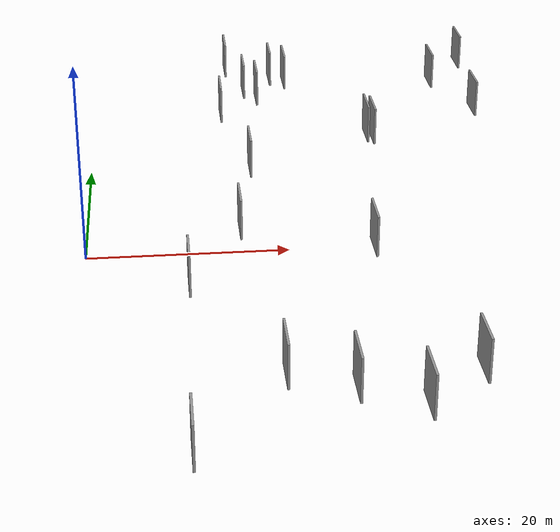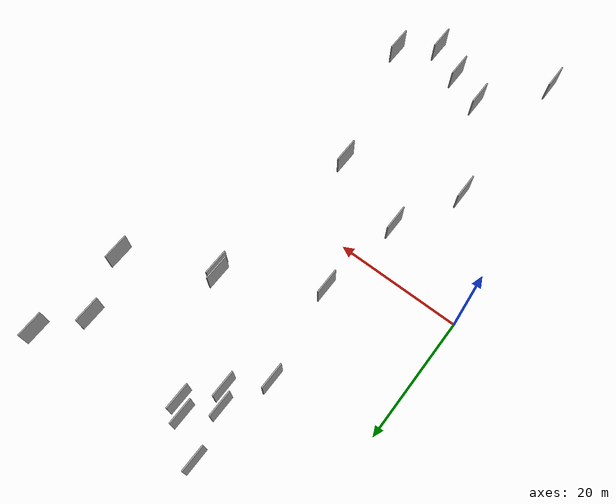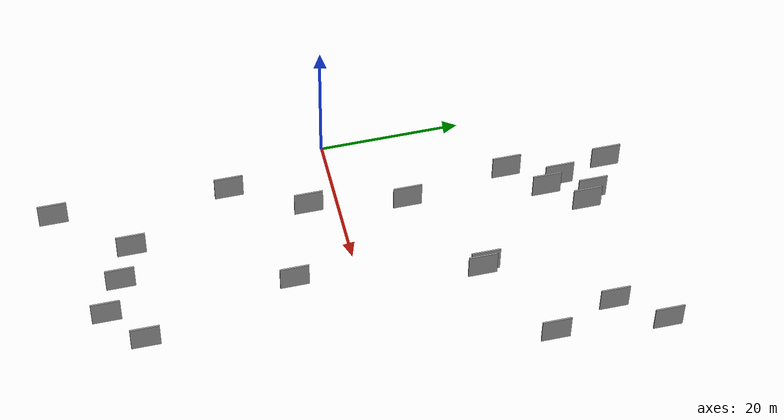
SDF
<sdf version="1.6">
 <world name="default">
  <scene>
   <sky><clouds><speed>12</speed></clouds></sky>
   <ambient>0.4 0.4 0.4 1</ambient>
   <background>0.7 0.7 0.7 1</background>
   <shadows>1</shadows>
  </scene>
  <gravity>0 0 -9.8066</gravity>
  <magnetic_field>6e-06 2.3e-05 -4.2e-05</magnetic_field>
  <physics default="0" name="default_physics" type="ode">
   <ode>
    <solver>
     <type>quick</type>
     <iters>10</iters>
     <sor>1.0</sor>
     <use_dynamic_moi_rescaling>0</use_dynamic_moi_rescaling>
    </solver>
    <constraints>
     <cfm>0</cfm>
     <erp>0.2</erp>
     <contact_max_correcting_vel>100</contact_max_correcting_vel>
     <contact_surface_layer>0.001</contact_surface_layer>
    </constraints>
   </ode>
   <max_step_size>0.004</max_step_size>
   <real_time_factor>1</real_time_factor>
   <real_time_update_rate>250</real_time_update_rate>
  </physics>
  <light name="sun" type="directional">
   <pose>0 0 10 0 0 0</pose>
   <diffuse>0.8 0.8 0.8 1</diffuse>
   <specular>0.2 0.2 0.2 1</specular>
   <attenuation>
    <range>1000</range>
    <constant>0.9</constant>
    <linear>0.01</linear>
    <quadratic>0.001</quadratic>
   </attenuation>
   <direction>-0.5 0.1 -0.9</direction>
  </light>
  <model name="grey_wall_1">
   <static>1</static>
   <pose>21.9541 -32.3000 5.0 0.000000 0.000000 1.570796</pose>
   <link name="link">
    <pose>0 0 2.00 0 0 0</pose>
    <collision name="collision"><geometry><box><size>4.00 0.2 4.00</size></box></geometry></collision>
    <visual name="visual">
     <cast_shadows>0</cast_shadows>
     <geometry><box><size>4.00 0.2 4.00</size></box></geometry>
     <material>
      <script>
       <uri>model://grey_wall/materials/scripts</uri>
       <uri>model://grey_wall/materials/textures</uri>
       <name>vrc/grey_wall</name>
      </script>
     </material>
    </visual>
   </link>
  </model>
  <model name="grey_wall_2">
   <static>1</static>
   <pose>15.8614 37.1222 5.0 0.000000 0.000000 1.570796</pose>
   <link name="link">
    <pose>0 0 2.00 0 0 0</pose>
    <collision name="collision"><geometry><box><size>4.00 0.2 4.00</size></box></geometry></collision>
    <visual name="visual">
     <cast_shadows>0</cast_shadows>
     <geometry><box><size>4.00 0.2 4.00</size></box></geometry>
     <material>
      <script>
       <uri>model://grey_wall/materials/scripts</uri>
       <uri>model://grey_wall/materials/textures</uri>
       <name>vrc/grey_wall</name>
      </script>
     </material>
    </visual>
   </link>
  </model>
  <model name="grey_wall_3">
   <static>1</static>
   <pose>20.9176 33.7744 5.0 0.000000 0.000000 1.570796</pose>
   <link name="link">
    <pose>0 0 2.00 0 0 0</pose>
    <collision name="collision"><geometry><box><size>4.00 0.2 4.00</size></box></geometry></collision>
    <visual name="visual">
     <cast_shadows>0</cast_shadows>
     <geometry><box><size>4.00 0.2 4.00</size></box></geometry>
     <material>
      <script>
       <uri>model://grey_wall/materials/scripts</uri>
       <uri>model://grey_wall/materials/textures</uri>
       <name>vrc/grey_wall</name>
      </script>
     </material>
    </visual>
   </link>
  </model>
  <model name="grey_wall_4">
   <static>1</static>
   <pose>29.9410 16.1891 5.0 0.000000 0.000000 1.570796</pose>
   <link name="link">
    <pose>0 0 2.00 0 0 0</pose>
    <collision name="collision"><geometry><box><size>4.00 0.2 4.00</size></box></geometry></collision>
    <visual name="visual">
     <cast_shadows>0</cast_shadows>
     <geometry><box><size>4.00 0.2 4.00</size></box></geometry>
     <material>
      <script>
       <uri>model://grey_wall/materials/scripts</uri>
       <uri>model://grey_wall/materials/textures</uri>
       <name>vrc/grey_wall</name>
      </script>
     </material>
    </visual>
   </link>
  </model>
  <model name="grey_wall_5">
   <static>1</static>
   <pose>26.8456 -9.4636 5.0 0.000000 0.000000 1.570796</pose>
   <link name="link">
    <pose>0 0 2.00 0 0 0</pose>
    <collision name="collision"><geometry><box><size>4.00 0.2 4.00</size></box></geometry></collision>
    <visual name="visual">
     <cast_shadows>0</cast_shadows>
     <geometry><box><size>4.00 0.2 4.00</size></box></geometry>
     <material>
      <script>
       <uri>model://grey_wall/materials/scripts</uri>
       <uri>model://grey_wall/materials/textures</uri>
       <name>vrc/grey_wall</name>
      </script>
     </material>
    </visual>
   </link>
  </model>
  <model name="grey_wall_6">
   <static>1</static>
   <pose>22.5121 32.5845 5.0 0.000000 0.000000 1.570796</pose>
   <link name="link">
    <pose>0 0 2.00 0 0 0</pose>
    <collision name="collision"><geometry><box><size>4.00 0.2 4.00</size></box></geometry></collision>
    <visual name="visual">
     <cast_shadows>0</cast_shadows>
     <geometry><box><size>4.00 0.2 4.00</size></box></geometry>
     <material>
      <script>
       <uri>model://grey_wall/materials/scripts</uri>
       <uri>model://grey_wall/materials/textures</uri>
       <name>vrc/grey_wall</name>
      </script>
     </material>
    </visual>
   </link>
  </model>
  <model name="grey_wall_7">
   <static>1</static>
   <pose>32.1951 -30.6162 5.0 0.000000 0.000000 1.570796</pose>
   <link name="link">
    <pose>0 0 2.00 0 0 0</pose>
    <collision name="collision"><geometry><box><size>4.00 0.2 4.00</size></box></geometry></collision>
    <visual name="visual">
     <cast_shadows>0</cast_shadows>
     <geometry><box><size>4.00 0.2 4.00</size></box></geometry>
     <material>
      <script>
       <uri>model://grey_wall/materials/scripts</uri>
       <uri>model://grey_wall/materials/textures</uri>
       <name>vrc/grey_wall</name>
      </script>
     </material>
    </visual>
   </link>
  </model>
  <model name="grey_wall_8">
   <static>1</static>
   <pose>18.9069 27.8121 5.0 0.000000 0.000000 1.570796</pose>
   <link name="link">
    <pose>0 0 2.00 0 0 0</pose>
    <collision name="collision"><geometry><box><size>4.00 0.2 4.00</size></box></geometry></collision>
    <visual name="visual">
     <cast_shadows>0</cast_shadows>
     <geometry><box><size>4.00 0.2 4.00</size></box></geometry>
     <material>
      <script>
       <uri>model://grey_wall/materials/scripts</uri>
       <uri>model://grey_wall/materials/textures</uri>
       <name>vrc/grey_wall</name>
      </script>
     </material>
    </visual>
   </link>
  </model>
  <model name="grey_wall_9">
   <static>1</static>
   <pose>14.8171 -4.9700 5.0 0.000000 0.000000 1.570796</pose>
   <link name="link">
    <pose>0 0 2.00 0 0 0</pose>
    <collision name="collision"><geometry><box><size>4.00 0.2 4.00</size></box></geometry></collision>
    <visual name="visual">
     <cast_shadows>0</cast_shadows>
     <geometry><box><size>4.00 0.2 4.00</size></box></geometry>
     <material>
      <script>
       <uri>model://grey_wall/materials/scripts</uri>
       <uri>model://grey_wall/materials/textures</uri>
       <name>vrc/grey_wall</name>
      </script>
     </material>
    </visual>
   </link>
  </model>
  <model name="grey_wall_10">
   <static>1</static>
   <pose>16.6754 -29.9544 5.0 0.000000 0.000000 1.570796</pose>
   <link name="link">
    <pose>0 0 2.00 0 0 0</pose>
    <collision name="collision"><geometry><box><size>4.00 0.2 4.00</size></box></geometry></collision>
    <visual name="visual">
     <cast_shadows>0</cast_shadows>
     <geometry><box><size>4.00 0.2 4.00</size></box></geometry>
     <material>
      <script>
       <uri>model://grey_wall/materials/scripts</uri>
       <uri>model://grey_wall/materials/textures</uri>
       <name>vrc/grey_wall</name>
      </script>
     </material>
    </visual>
   </link>
  </model>
  <model name="grey_wall_11">
   <static>1</static>
   <pose>30.5203 15.6512 5.0 0.000000 0.000000 1.570796</pose>
   <link name="link">
    <pose>0 0 2.00 0 0 0</pose>
    <collision name="collision"><geometry><box><size>4.00 0.2 4.00</size></box></geometry></collision>
    <visual name="visual">
     <cast_shadows>0</cast_shadows>
     <geometry><box><size>4.00 0.2 4.00</size></box></geometry>
     <material>
      <script>
       <uri>model://grey_wall/materials/scripts</uri>
       <uri>model://grey_wall/materials/textures</uri>
       <name>vrc/grey_wall</name>
      </script>
     </material>
    </visual>
   </link>
  </model>
  <model name="grey_wall_12">
   <static>1</static>
   <pose>42.9933 22.3635 5.0 0.000000 0.000000 1.570796</pose>
   <link name="link">
    <pose>0 0 2.00 0 0 0</pose>
    <collision name="collision"><geometry><box><size>4.00 0.2 4.00</size></box></geometry></collision>
    <visual name="visual">
     <cast_shadows>0</cast_shadows>
     <geometry><box><size>4.00 0.2 4.00</size></box></geometry>
     <material>
      <script>
       <uri>model://grey_wall/materials/scripts</uri>
       <uri>model://grey_wall/materials/textures</uri>
       <name>vrc/grey_wall</name>
      </script>
     </material>
    </visual>
   </link>
  </model>
  <model name="grey_wall_13">
   <static>1</static>
   <pose>16.7625 8.5440 5.0 0.000000 0.000000 1.570796</pose>
   <link name="link">
    <pose>0 0 2.00 0 0 0</pose>
    <collision name="collision"><geometry><box><size>4.00 0.2 4.00</size></box></geometry></collision>
    <visual name="visual">
     <cast_shadows>0</cast_shadows>
     <geometry><box><size>4.00 0.2 4.00</size></box></geometry>
     <material>
      <script>
       <uri>model://grey_wall/materials/scripts</uri>
       <uri>model://grey_wall/materials/textures</uri>
       <name>vrc/grey_wall</name>
      </script>
     </material>
    </visual>
   </link>
  </model>
  <model name="grey_wall_14">
   <static>1</static>
   <pose>9.0680 -39.5430 5.0 0.000000 0.000000 1.570796</pose>
   <link name="link">
    <pose>0 0 2.00 0 0 0</pose>
    <collision name="collision"><geometry><box><size>4.00 0.2 4.00</size></box></geometry></collision>
    <visual name="visual">
     <cast_shadows>0</cast_shadows>
     <geometry><box><size>4.00 0.2 4.00</size></box></geometry>
     <material>
      <script>
       <uri>model://grey_wall/materials/scripts</uri>
       <uri>model://grey_wall/materials/textures</uri>
       <name>vrc/grey_wall</name>
      </script>
     </material>
    </visual>
   </link>
  </model>
  <model name="grey_wall_15">
   <static>1</static>
   <pose>9.7053 -15.1556 5.0 0.000000 0.000000 1.570796</pose>
   <link name="link">
    <pose>0 0 2.00 0 0 0</pose>
    <collision name="collision"><geometry><box><size>4.00 0.2 4.00</size></box></geometry></collision>
    <visual name="visual">
     <cast_shadows>0</cast_shadows>
     <geometry><box><size>4.00 0.2 4.00</size></box></geometry>
     <material>
      <script>
       <uri>model://grey_wall/materials/scripts</uri>
       <uri>model://grey_wall/materials/textures</uri>
       <name>vrc/grey_wall</name>
      </script>
     </material>
    </visual>
   </link>
  </model>
  <model name="grey_wall_16">
   <static>1</static>
   <pose>44.3182 37.4305 5.0 0.000000 0.000000 1.570796</pose>
   <link name="link">
    <pose>0 0 2.00 0 0 0</pose>
    <collision name="collision"><geometry><box><size>4.00 0.2 4.00</size></box></geometry></collision>
    <visual name="visual">
     <cast_shadows>0</cast_shadows>
     <geometry><box><size>4.00 0.2 4.00</size></box></geometry>
     <material>
      <script>
       <uri>model://grey_wall/materials/scripts</uri>
       <uri>model://grey_wall/materials/textures</uri>
       <name>vrc/grey_wall</name>
      </script>
     </material>
    </visual>
   </link>
  </model>
  <model name="grey_wall_17">
   <static>1</static>
   <pose>39.7568 31.3371 5.0 0.000000 0.000000 1.570796</pose>
   <link name="link">
    <pose>0 0 2.00 0 0 0</pose>
    <collision name="collision"><geometry><box><size>4.00 0.2 4.00</size></box></geometry></collision>
    <visual name="visual">
     <cast_shadows>0</cast_shadows>
     <geometry><box><size>4.00 0.2 4.00</size></box></geometry>
     <material>
      <script>
       <uri>model://grey_wall/materials/scripts</uri>
       <uri>model://grey_wall/materials/textures</uri>
       <name>vrc/grey_wall</name>
      </script>
     </material>
    </visual>
   </link>
  </model>
  <model name="grey_wall_18">
   <static>1</static>
   <pose>17.5712 29.9880 5.0 0.000000 0.000000 1.570796</pose>
   <link name="link">
    <pose>0 0 2.00 0 0 0</pose>
    <collision name="collision"><geometry><box><size>4.00 0.2 4.00</size></box></geometry></collision>
    <visual name="visual">
     <cast_shadows>0</cast_shadows>
     <geometry><box><size>4.00 0.2 4.00</size></box></geometry>
     <material>
      <script>
       <uri>model://grey_wall/materials/scripts</uri>
       <uri>model://grey_wall/materials/textures</uri>
       <name>vrc/grey_wall</name>
      </script>
     </material>
    </visual>
   </link>
  </model>
  <model name="grey_wall_19">
   <static>1</static>
   <pose>14.5794 23.1910 5.0 0.000000 0.000000 1.570796</pose>
   <link name="link">
    <pose>0 0 2.00 0 0 0</pose>
    <collision name="collision"><geometry><box><size>4.00 0.2 4.00</size></box></geometry></collision>
    <visual name="visual">
     <cast_shadows>0</cast_shadows>
     <geometry><box><size>4.00 0.2 4.00</size></box></geometry>
     <material>
      <script>
       <uri>model://grey_wall/materials/scripts</uri>
       <uri>model://grey_wall/materials/textures</uri>
       <name>vrc/grey_wall</name>
      </script>
     </material>
    </visual>
   </link>
  </model>
  <model name="grey_wall_20">
   <static>1</static>
   <pose>27.0443 -35.0278 5.0 0.000000 0.000000 1.570796</pose>
   <link name="link">
    <pose>0 0 2.00 0 0 0</pose>
    <collision name="collision"><geometry><box><size>4.00 0.2 4.00</size></box></geometry></collision>
    <visual name="visual">
     <cast_shadows>0</cast_shadows>
     <geometry><box><size>4.00 0.2 4.00</size></box></geometry>
     <material>
      <script>
       <uri>model://grey_wall/materials/scripts</uri>
       <uri>model://grey_wall/materials/textures</uri>
       <name>vrc/grey_wall</name>
      </script>
     </material>
    </visual>
   </link>
  </model>
 </world>
</sdf>
